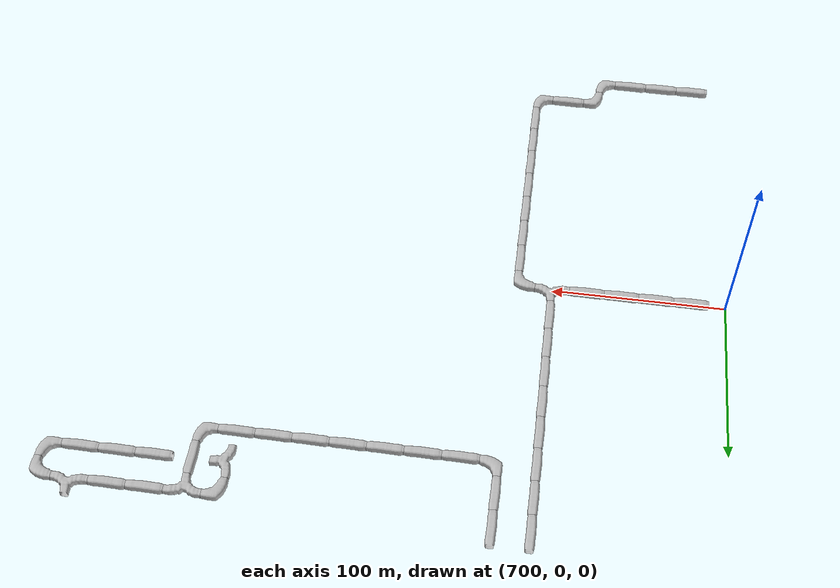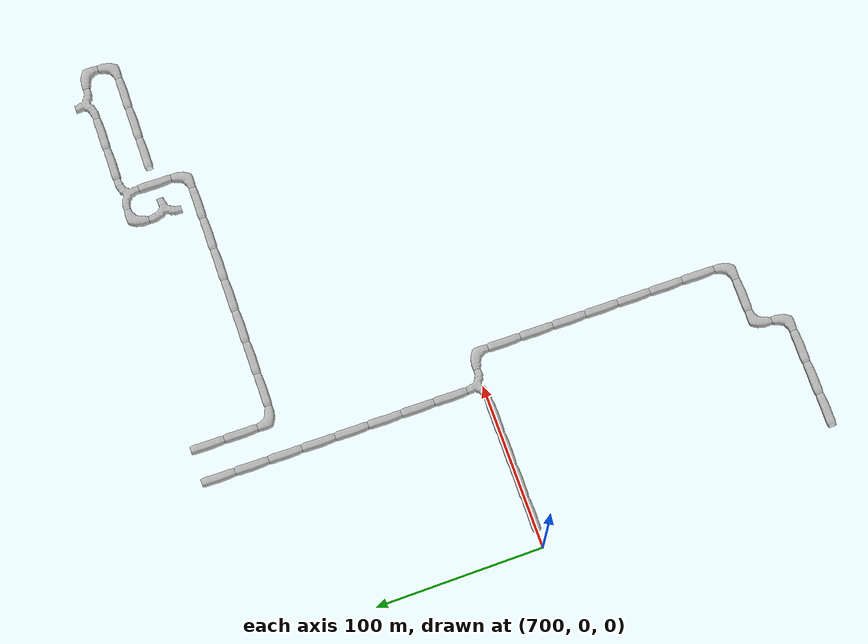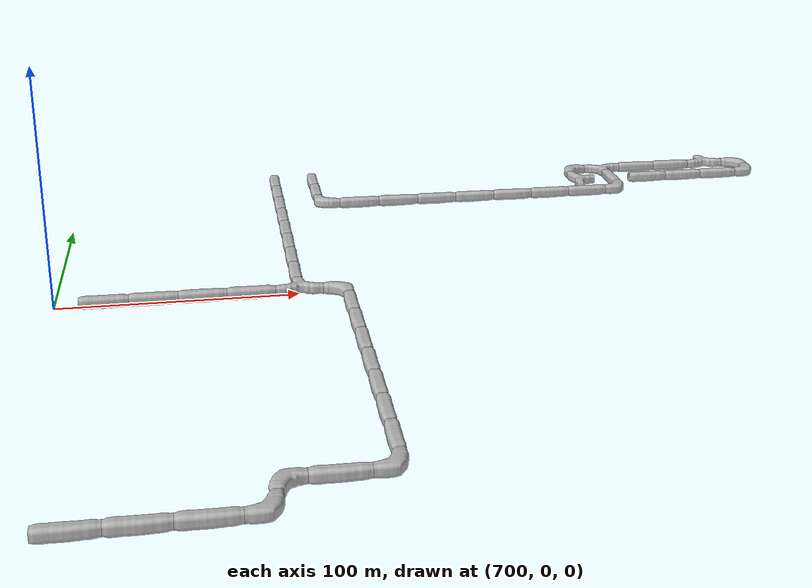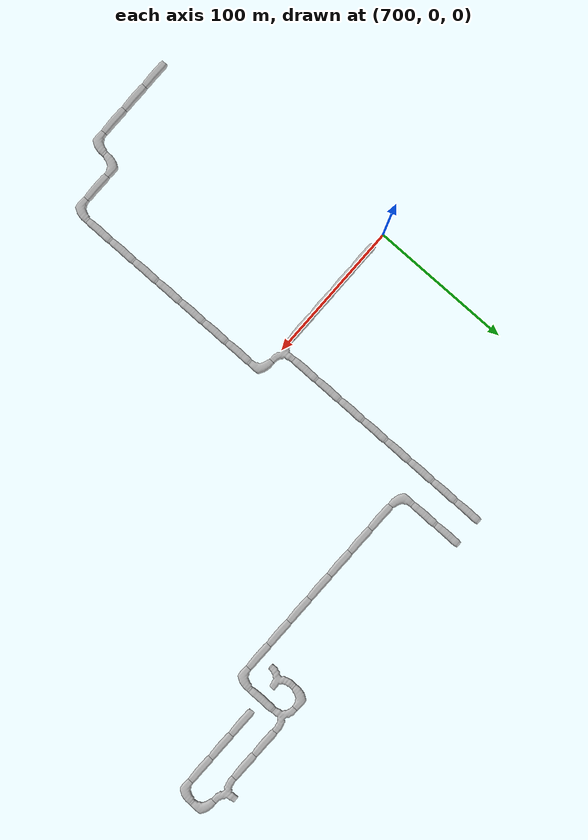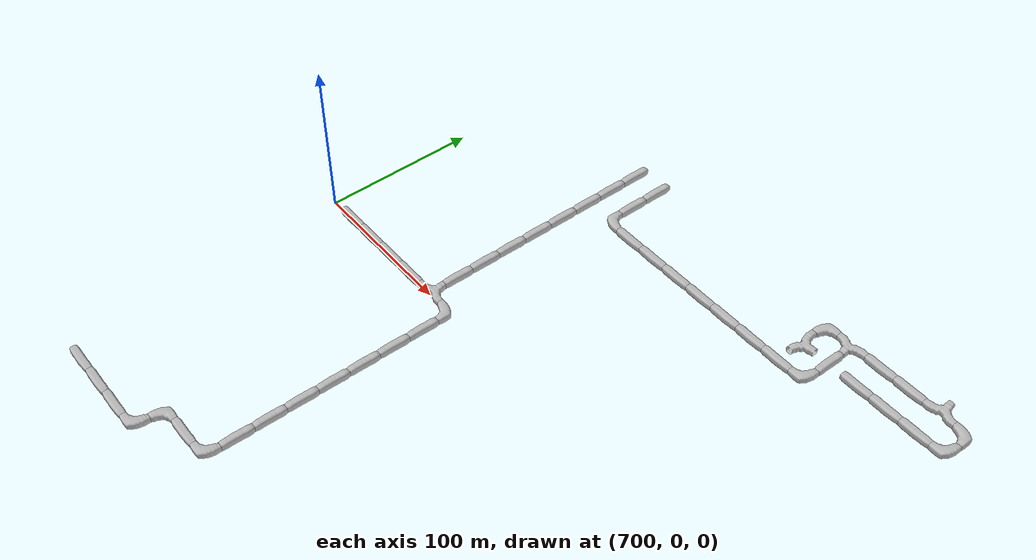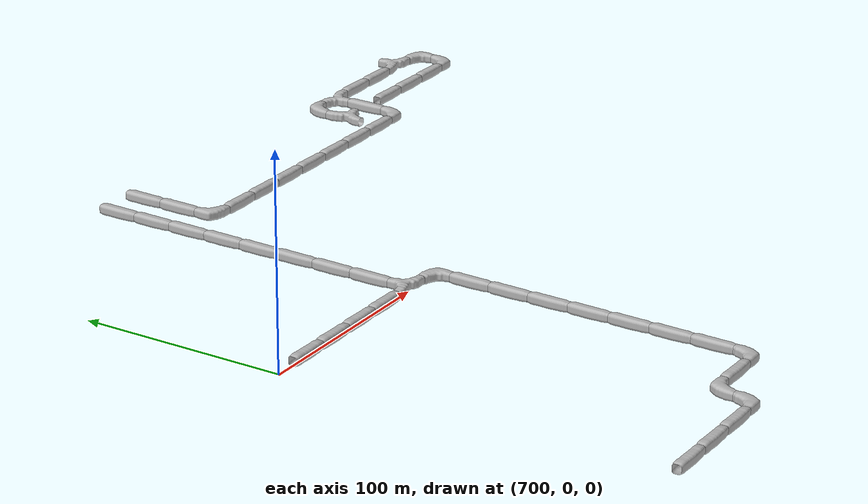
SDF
<sdf version="1.6">
 <world name="cave_16000_64">
  <include>
   <static>true</static>
   <name>cave_36_0</name>
   <pose>720 0 0 0 0 1.5707963267948966</pose>
   <uri>model://cave_straight_20m</uri>
  </include>
  <include>
   <static>true</static>
   <name>cave_37_0</name>
   <pose>740 0 0 0 0 1.5707963267948966</pose>
   <uri>model://cave_straight_20m</uri>
  </include>
  <include>
   <static>true</static>
   <name>cave_38_0</name>
   <pose>760 0 0 0 0 1.5707963267948966</pose>
   <uri>model://cave_straight_20m</uri>
  </include>
  <include>
   <static>true</static>
   <name>cave_39_0</name>
   <pose>780 0 0 0 0 1.5707963267948966</pose>
   <uri>model://cave_straight_20m</uri>
  </include>
  <include>
   <static>true</static>
   <name>cave_40_0</name>
   <pose>800 0 0 0 0 0.0</pose>
   <uri>model://cave_3way_20m</uri>
  </include>
  <include>
   <static>true</static>
   <name>cave_41_0</name>
   <pose>820 0 0 0 0 3.141592653589793</pose>
   <uri>model://cave_L_20m</uri>
  </include>
  <include>
   <static>true</static>
   <name>cave_41_-1</name>
   <pose>820 -20 0 0 0 0.0</pose>
   <uri>model://cave_straight_20m</uri>
  </include>
  <include>
   <static>true</static>
   <name>cave_41_-2</name>
   <pose>820 -40 0 0 0 0.0</pose>
   <uri>model://cave_straight_20m</uri>
  </include>
  <include>
   <static>true</static>
   <name>cave_41_-3</name>
   <pose>820 -60 0 0 0 0.0</pose>
   <uri>model://cave_straight_20m</uri>
  </include>
  <include>
   <static>true</static>
   <name>cave_41_-4</name>
   <pose>820 -80 0 0 0 0.0</pose>
   <uri>model://cave_straight_20m</uri>
  </include>
  <include>
   <static>true</static>
   <name>cave_41_-5</name>
   <pose>820 -100 0 0 0 0.0</pose>
   <uri>model://cave_straight_20m</uri>
  </include>
  <include>
   <static>true</static>
   <name>cave_41_-6</name>
   <pose>820 -120 0 0 0 0.0</pose>
   <uri>model://cave_straight_20m</uri>
  </include>
  <include>
   <static>true</static>
   <name>cave_41_-7</name>
   <pose>820 -140 0 0 0 0.0</pose>
   <uri>model://cave_straight_20m</uri>
  </include>
  <include>
   <static>true</static>
   <name>cave_41_-8</name>
   <pose>820 -160 0 0 0 1.5707963267948966</pose>
   <uri>model://cave_L_20m</uri>
  </include>
  <include>
   <static>true</static>
   <name>cave_40_-8</name>
   <pose>800 -160 0 0 0 1.5707963267948966</pose>
   <uri>model://cave_straight_20m</uri>
  </include>
  <include>
   <static>true</static>
   <name>cave_39_-8</name>
   <pose>780 -160 0 0 0 -1.5707963267948966</pose>
   <uri>model://cave_L_20m</uri>
  </include>
  <include>
   <static>true</static>
   <name>cave_39_-9</name>
   <pose>780 -180 0 0 0 1.5707963267948966</pose>
   <uri>model://cave_L_20m</uri>
  </include>
  <include>
   <static>true</static>
   <name>cave_38_-9</name>
   <pose>760 -180 0 0 0 1.5707963267948966</pose>
   <uri>model://cave_straight_20m</uri>
  </include>
  <include>
   <static>true</static>
   <name>cave_37_-9</name>
   <pose>740 -180 0 0 0 1.5707963267948966</pose>
   <uri>model://cave_straight_20m</uri>
  </include>
  <include>
   <static>true</static>
   <name>cave_36_-9</name>
   <pose>720 -180 0 0 0 1.5707963267948966</pose>
   <uri>model://cave_straight_20m</uri>
  </include>
  <include>
   <static>true</static>
   <name>cave_40_1</name>
   <pose>800 20 0 0 0 0.0</pose>
   <uri>model://cave_straight_20m</uri>
  </include>
  <include>
   <static>true</static>
   <name>cave_40_2</name>
   <pose>800 40 0 0 0 0.0</pose>
   <uri>model://cave_straight_20m</uri>
  </include>
  <include>
   <static>true</static>
   <name>cave_40_3</name>
   <pose>800 60 0 0 0 0.0</pose>
   <uri>model://cave_straight_20m</uri>
  </include>
  <include>
   <static>true</static>
   <name>cave_40_4</name>
   <pose>800 80 0 0 0 0.0</pose>
   <uri>model://cave_straight_20m</uri>
  </include>
  <include>
   <static>true</static>
   <name>cave_40_5</name>
   <pose>800 100 0 0 0 0.0</pose>
   <uri>model://cave_straight_20m</uri>
  </include>
  <include>
   <static>true</static>
   <name>cave_40_6</name>
   <pose>800 120 0 0 0 0.0</pose>
   <uri>model://cave_straight_20m</uri>
  </include>
  <include>
   <static>true</static>
   <name>cave_40_7</name>
   <pose>800 140 0 0 0 0.0</pose>
   <uri>model://cave_straight_20m</uri>
  </include>
  <include>
   <static>true</static>
   <name>cave_40_8</name>
   <pose>800 160 0 0 0 0.0</pose>
   <uri>model://cave_straight_20m</uri>
  </include>
  <include>
   <static>true</static>
   <name>cave_41_8</name>
   <pose>820 160 0 0 0 0.0</pose>
   <uri>model://cave_straight_20m</uri>
  </include>
  <include>
   <static>true</static>
   <name>cave_41_7</name>
   <pose>820 140 0 0 0 0.0</pose>
   <uri>model://cave_straight_20m</uri>
  </include>
  <include>
   <static>true</static>
   <name>cave_41_6</name>
   <pose>820 120 0 0 0 0.0</pose>
   <uri>model://cave_L_20m</uri>
  </include>
  <include>
   <static>true</static>
   <name>cave_42_6</name>
   <pose>840 120 0 0 0 1.5707963267948966</pose>
   <uri>model://cave_straight_20m</uri>
  </include>
  <include>
   <static>true</static>
   <name>cave_43_6</name>
   <pose>860 120 0 0 0 1.5707963267948966</pose>
   <uri>model://cave_straight_20m</uri>
  </include>
  <include>
   <static>true</static>
   <name>cave_44_6</name>
   <pose>880 120 0 0 0 1.5707963267948966</pose>
   <uri>model://cave_straight_20m</uri>
  </include>
  <include>
   <static>true</static>
   <name>cave_45_6</name>
   <pose>900 120 0 0 0 1.5707963267948966</pose>
   <uri>model://cave_straight_20m</uri>
  </include>
  <include>
   <static>true</static>
   <name>cave_46_6</name>
   <pose>920 120 0 0 0 1.5707963267948966</pose>
   <uri>model://cave_straight_20m</uri>
  </include>
  <include>
   <static>true</static>
   <name>cave_47_6</name>
   <pose>940 120 0 0 0 1.5707963267948966</pose>
   <uri>model://cave_straight_20m</uri>
  </include>
  <include>
   <static>true</static>
   <name>cave_48_6</name>
   <pose>960 120 0 0 0 1.5707963267948966</pose>
   <uri>model://cave_straight_20m</uri>
  </include>
  <include>
   <static>true</static>
   <name>cave_49_6</name>
   <pose>980 120 0 0 0 1.5707963267948966</pose>
   <uri>model://cave_L_20m</uri>
  </include>
  <include>
   <static>true</static>
   <name>cave_49_7</name>
   <pose>980 140 0 0 0 0.0</pose>
   <uri>model://cave_straight_20m</uri>
  </include>
  <include>
   <static>true</static>
   <name>cave_49_8</name>
   <pose>980 160 0 0 0 3.141592653589793</pose>
   <uri>model://cave_3way_20m</uri>
  </include>
  <include>
   <static>true</static>
   <name>cave_50_8</name>
   <pose>1000 160 0 0 0 1.5707963267948966</pose>
   <uri>model://cave_straight_20m</uri>
  </include>
  <include>
   <static>true</static>
   <name>cave_51_8</name>
   <pose>1020 160 0 0 0 1.5707963267948966</pose>
   <uri>model://cave_straight_20m</uri>
  </include>
  <include>
   <static>true</static>
   <name>cave_52_8</name>
   <pose>1040 160 0 0 0 0.0</pose>
   <uri>model://cave_3way_20m</uri>
  </include>
  <include>
   <static>true</static>
   <name>cave_53_8</name>
   <pose>1060 160 0 0 0 3.141592653589793</pose>
   <uri>model://cave_L_20m</uri>
  </include>
  <include>
   <static>true</static>
   <name>cave_53_7</name>
   <pose>1060 140 0 0 0 1.5707963267948966</pose>
   <uri>model://cave_L_20m</uri>
  </include>
  <include>
   <static>true</static>
   <name>cave_52_7</name>
   <pose>1040 140 0 0 0 1.5707963267948966</pose>
   <uri>model://cave_straight_20m</uri>
  </include>
  <include>
   <static>true</static>
   <name>cave_51_7</name>
   <pose>1020 140 0 0 0 1.5707963267948966</pose>
   <uri>model://cave_straight_20m</uri>
  </include>
  <include>
   <static>true</static>
   <name>cave_50_7</name>
   <pose>1000 140 0 0 0 1.5707963267948966</pose>
   <uri>model://cave_straight_20m</uri>
  </include>
  <include>
   <static>true</static>
   <name>cave_48_8</name>
   <pose>960 160 0 0 0 -1.5707963267948966</pose>
   <uri>model://cave_L_20m</uri>
  </include>
  <include>
   <static>true</static>
   <name>cave_48_7</name>
   <pose>960 140 0 0 0 -1.5707963267948966</pose>
   <uri>model://cave_3way_20m</uri>
  </include>
 </world>
</sdf>
